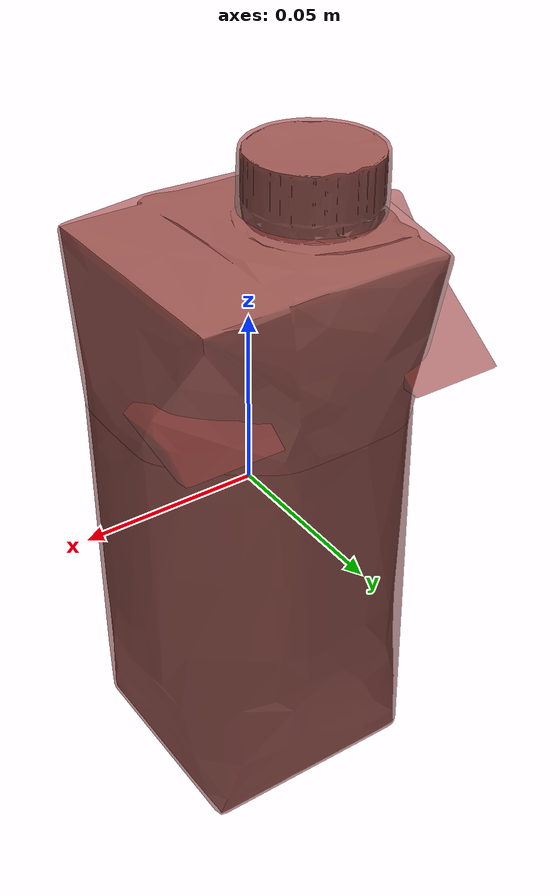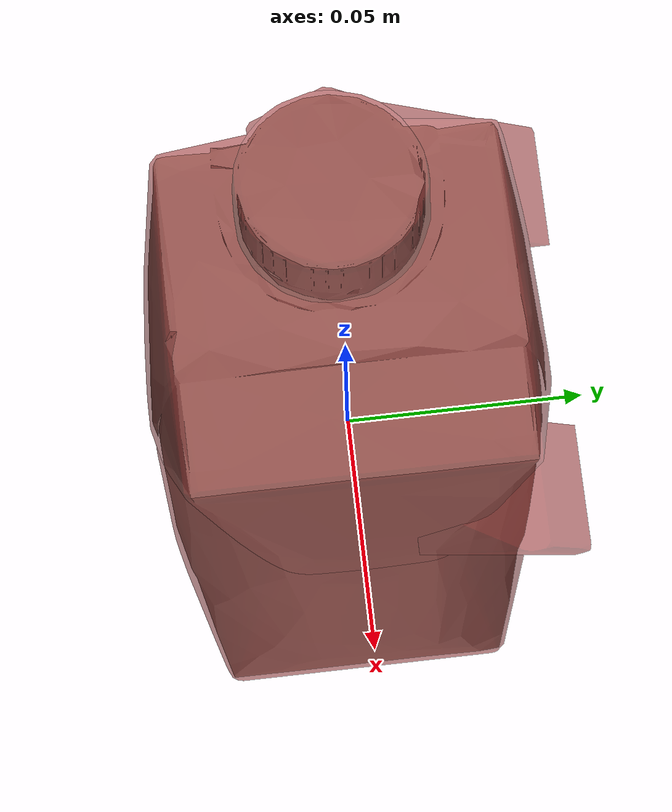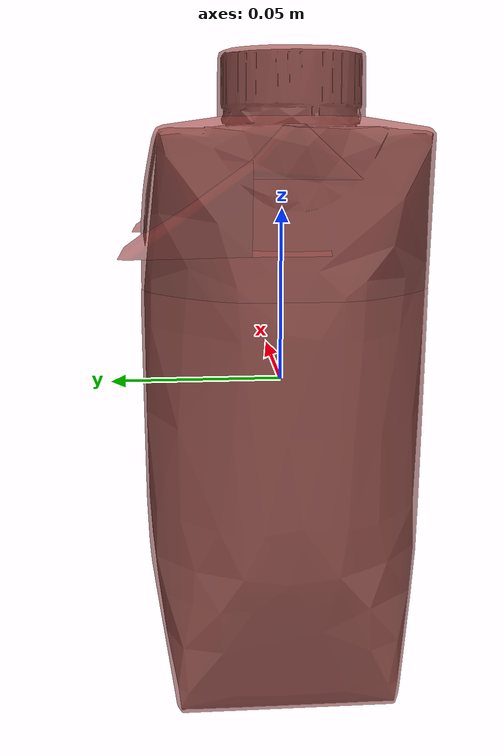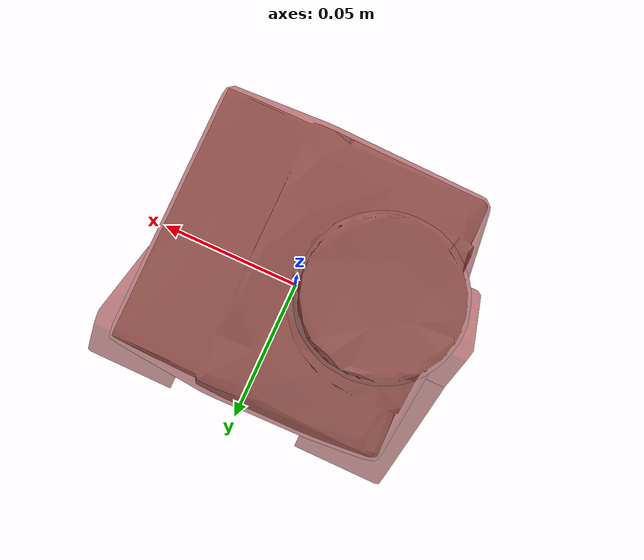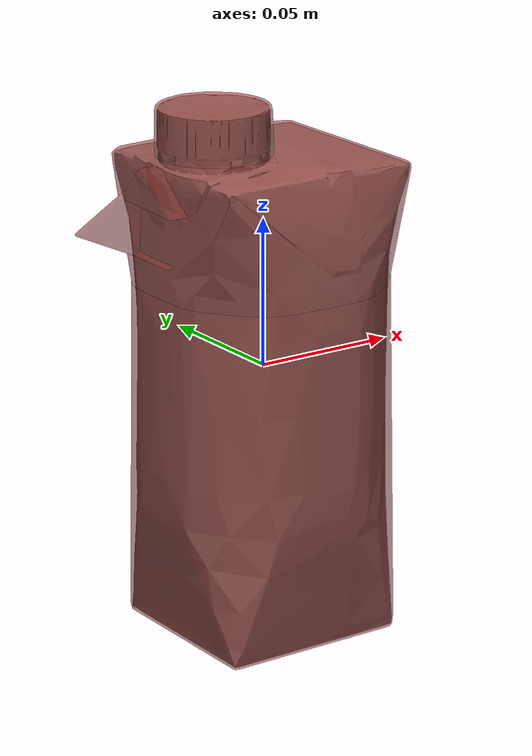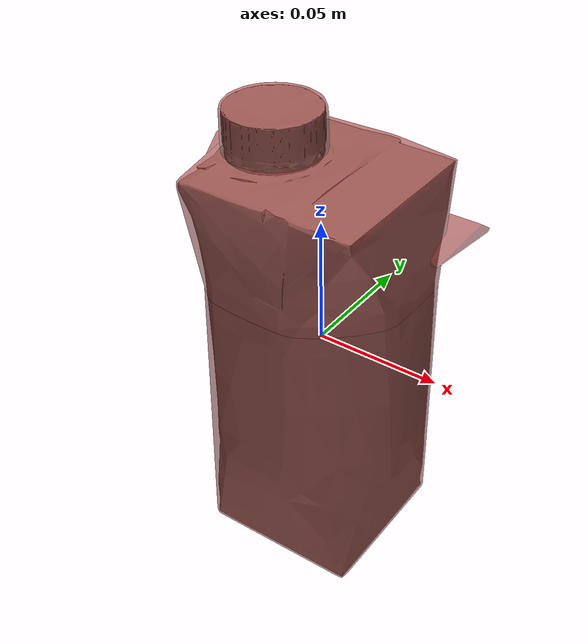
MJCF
<?xml version='1.0' encoding='utf-8'?>
<mujoco model="milk_11">
  <asset>
    <mesh file="visual/model_normalized_0.obj" name="model_normalized_0_vis" scale="0.18 0.18 0.18" refquat="0.7071067811865475 0.0 0.0 0.7071067811865476" />
    <mesh file="visual/model_normalized_1.obj" name="model_normalized_1_vis" scale="0.18 0.18 0.18" refquat="0.7071067811865475 0.0 0.0 0.7071067811865476" />
    <texture type="2d" name="image0" file="visual/image0.png" />
    <material name="Materiale_tappo" texture="image0" specular="0.5" shininess="0.164349142" />
    <material name="Opaco" texture="image0" specular="0.5" shininess="0.25" />
    <mesh file="collision/collision_mesh_collision_0.obj" name="milk_collision_mesh_0" scale="0.18 0.18 0.18" refquat="0.7071067811865475 0.0 0.0 0.7071067811865476" />
    <mesh file="collision/collision_mesh_collision_1.obj" name="milk_collision_mesh_1" scale="0.18 0.18 0.18" refquat="0.7071067811865475 0.0 0.0 0.7071067811865476" />
    <mesh file="collision/collision_mesh_collision_2.obj" name="milk_collision_mesh_2" scale="0.18 0.18 0.18" refquat="0.7071067811865475 0.0 0.0 0.7071067811865476" />
    <mesh file="collision/collision_mesh_collision_3.obj" name="milk_collision_mesh_3" scale="0.18 0.18 0.18" refquat="0.7071067811865475 0.0 0.0 0.7071067811865476" />
    <mesh file="collision/collision_mesh_collision_4.obj" name="milk_collision_mesh_4" scale="0.18 0.18 0.18" refquat="0.7071067811865475 0.0 0.0 0.7071067811865476" />
    <mesh file="collision/collision_mesh_collision_5.obj" name="milk_collision_mesh_5" scale="0.18 0.18 0.18" refquat="0.7071067811865475 0.0 0.0 0.7071067811865476" />
    <mesh file="collision/collision_mesh_collision_6.obj" name="milk_collision_mesh_6" scale="0.18 0.18 0.18" refquat="0.7071067811865475 0.0 0.0 0.7071067811865476" />
    <mesh file="collision/collision_mesh_collision_7.obj" name="milk_collision_mesh_7" scale="0.18 0.18 0.18" refquat="0.7071067811865475 0.0 0.0 0.7071067811865476" />
  </asset>
  <default>
    <default class="region">
      <geom group="1" conaffinity="0" contype="0" rgba="0 1 0 0" mass="0" />
    </default>
    <default class="collision">
      <geom group="0" rgba="0.5 0 0 0.5" density="904.208042313" />
    </default>
  </default>
  <worldbody>
    <body>
      <body name="object">
        <geom solimp="0.998 0.998 0.001" solref="0.001 1" density="90.420804231" friction="0.95 0.3 0.1" type="mesh" mesh="model_normalized_0_vis" conaffinity="0" contype="0" group="1" material="Opaco" />
        <geom solimp="0.998 0.998 0.001" solref="0.001 1" density="90.420804231" friction="0.95 0.3 0.1" type="mesh" mesh="model_normalized_1_vis" conaffinity="0" contype="0" group="1" material="Materiale_tappo" />
        <geom class="region" name="reg_bbox" type="box" pos="0.0 0.0 -0.0002480561999999997" size="0.028773512999999997 0.028773512999999997 0.09074194740000001" />
        <geom mesh="milk_collision_mesh_0" type="mesh" class="collision" />
        <geom mesh="milk_collision_mesh_1" type="mesh" class="collision" />
        <geom mesh="milk_collision_mesh_2" type="mesh" class="collision" />
        <geom mesh="milk_collision_mesh_3" type="mesh" class="collision" />
        <geom mesh="milk_collision_mesh_4" type="mesh" class="collision" />
        <geom mesh="milk_collision_mesh_5" type="mesh" class="collision" />
        <geom mesh="milk_collision_mesh_6" type="mesh" class="collision" />
        <geom mesh="milk_collision_mesh_7" type="mesh" class="collision" />
      </body>
    </body>
  </worldbody>
</mujoco>
